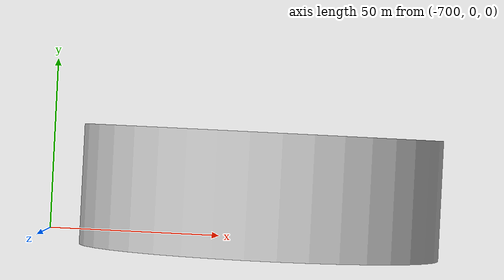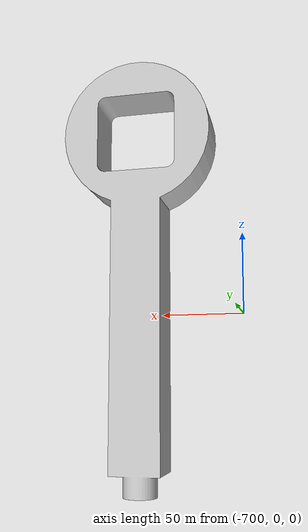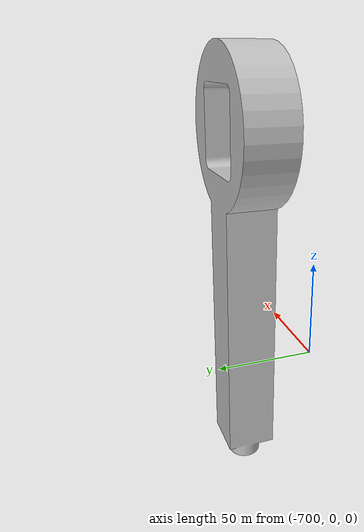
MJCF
<mujoco model="Pendel">
  <default>
    <default class="visual">
      <geom group="2" type="mesh" contype="0" conaffinity="0"/>
    </default>
    <default class="collision">
      <geom group="3" type="mesh"/>
    </default>
  </default>
  <asset>
    <material name="mat_1" specular="0.484529" shininess="1.0" rgba="0.752941 0.752941 0.752941 1.0"/>
    <mesh file="Pendel.obj"/>
  </asset>
  <worldbody>
    <body name="Pendel">
      <freejoint/>
      <geom material="mat_1" mesh="Pendel" class="visual"/>
      <geom mesh="Pendel" class="collision"/>
    </body>
  </worldbody>
</mujoco>
